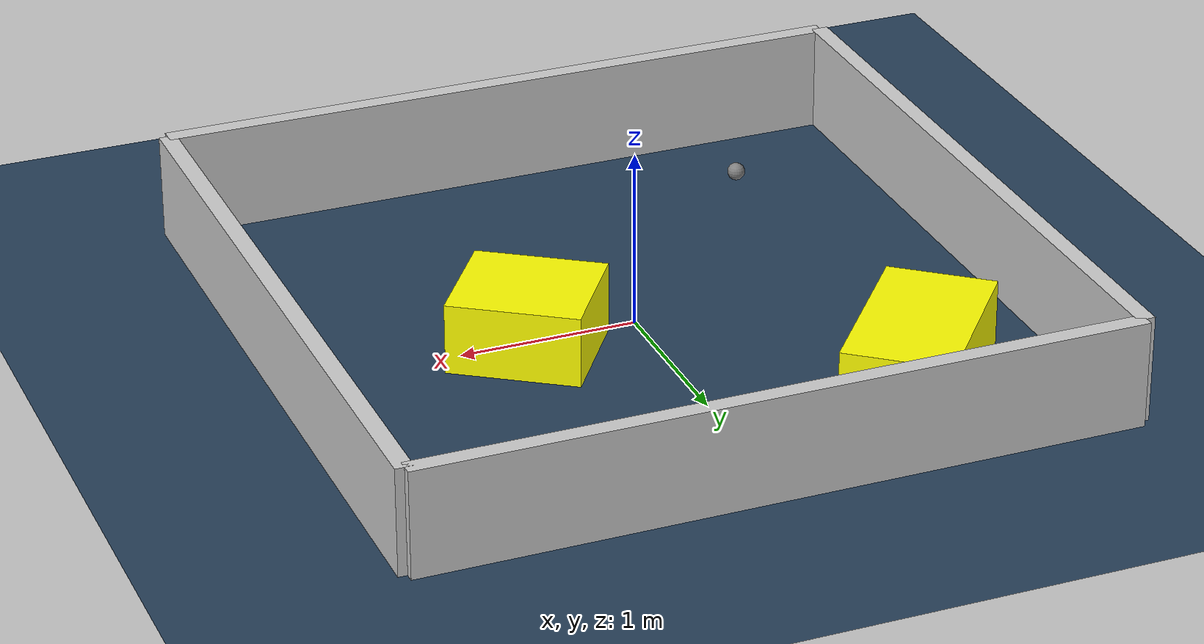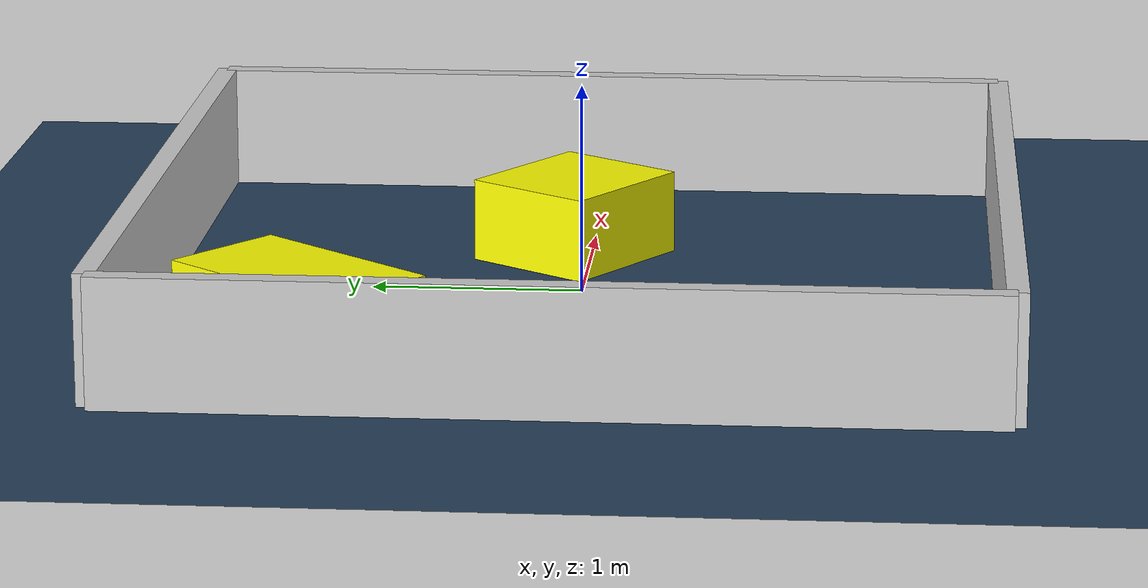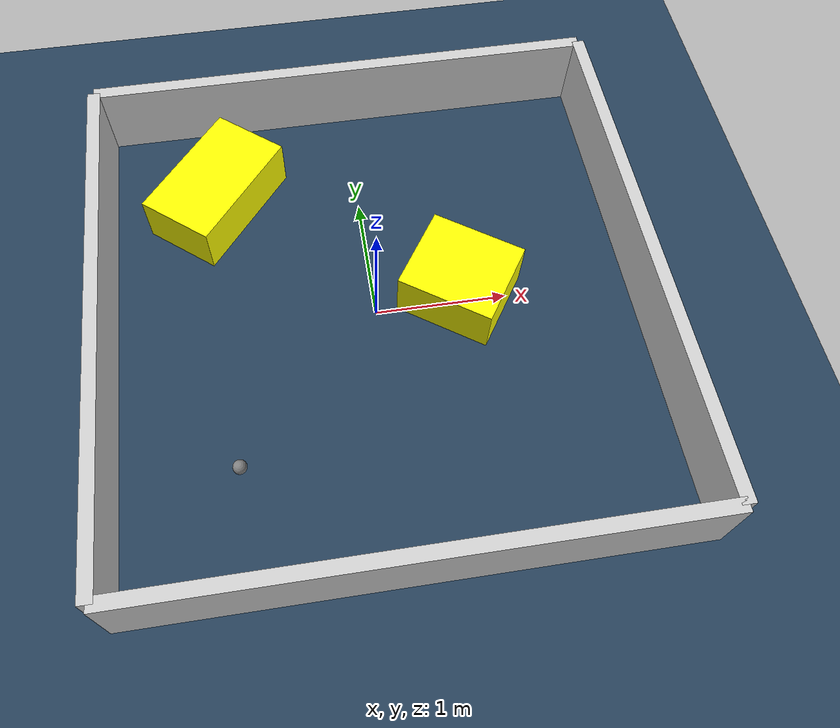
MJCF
<?xml version="1.0" ?>
<mujoco model="generated_environment">
  <option timestep="0.01" integrator="RK4" cone="elliptic"/>
  <default>
    <geom density="1"/>
  </default>
  <asset>
    <texture builtin="gradient" height="3072" rgb1="0.3 0.5 0.7" rgb2="0 0 0" type="skybox" width="512"/>
    <texture builtin="checker" height="300" mark="edge" markrgb="0.8 0.8 0.8" name="groundplane" rgb1="0.2 0.3 0.4" rgb2="0.1 0.2 0.3" type="2d" width="300"/>
    <material name="groundplane" reflectance="0.2" texrepeat="5 5" texture="groundplane" texuniform="true"/>
    <material name="robot" rgba="0.0 1.0 0.0 1"/>
  </asset>
  <worldbody>
    <light dir="0 0 -1" directional="true" pos="0 0 1.5"/>
    <geom condim="4" friction="1.0 0.005 0.001" material="groundplane" name="floor" size="0 0 0.05" type="plane"/>
    <body name="walls">
      <geom name="wall_1" condim="4" pos="-2.0 0.0 0.3" rgba="0.800000011920929 0.800000011920929 0.800000011920929 1.0" size="0.05 2.0 0.3" type="box"/>
      <geom name="wall_2" condim="4" pos="2.0 0.0 0.3" rgba="0.800000011920929 0.800000011920929 0.800000011920929 1.0" size="0.05 2.0 0.3" type="box"/>
      <geom name="wall_3" condim="4" pos="0.0 -2.0 0.3" rgba="0.800000011920929 0.800000011920929 0.800000011920929 1.0" size="2.0 0.05 0.3" type="box"/>
      <geom name="wall_4" condim="4" pos="0.0 2.0 0.3" rgba="0.800000011920929 0.800000011920929 0.800000011920929 1.0" size="2.0 0.05 0.3" type="box"/>
    </body>
    <body name="robot">
      <joint name="joint_x" type="slide" pos="0 0 0" axis="1 0 0"/>
      <joint name="joint_y" type="slide" pos="0 0 0" axis="0 1 0"/>
      <geom name="robot" type="sphere" pos="-1.0983166042967185 -1.150807239541485 0.2" size="0.05" mass="5." friction="1.0 0.005 0.0001" condim="4"/>
      <site name="sensor_ball"/>
    </body>
    <body name="obstacle_1_movable">
      <geom name="obstacle_1_movable" condim="4" pos="-1.116794842236929 1.1971827147365175 0.2" euler="0 0 320.8351921093664" friction="1.0 0.005 0.001" rgba="1 1 0 1" size="0.30391052486025943 0.5108310461464727 0.2" type="box" mass="0.1"/>
      <joint type="free"/>
    </body>
    <body name="obstacle_2_movable">
      <geom name="obstacle_2_movable" condim="4" pos="0.648350843165876 0.08201852095753326 0.2" euler="0 0 55.49073390239292" friction="1.0 0.005 0.001" rgba="1 1 0 1" size="0.3308523555596889 0.3681387632272136 0.2" type="box" mass="0.1"/>
      <joint type="free"/>
    </body>
  </worldbody>
  <actuator>
    <motor name="actuator_x" joint="joint_x" gear="1" ctrlrange="-1 1"/>
    <motor name="actuator_y" joint="joint_y" gear="1" ctrlrange="-1 1"/>
  </actuator>
</mujoco>
